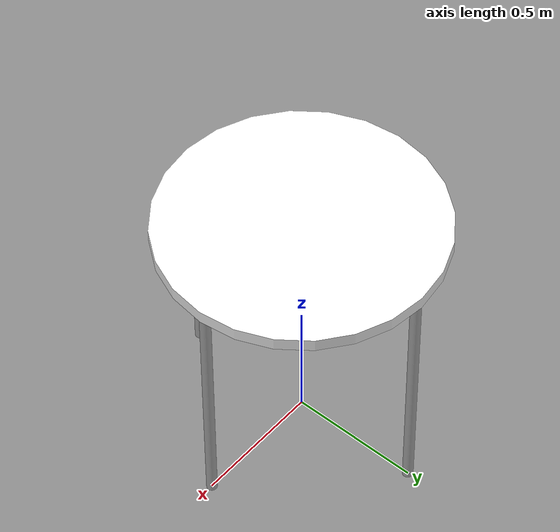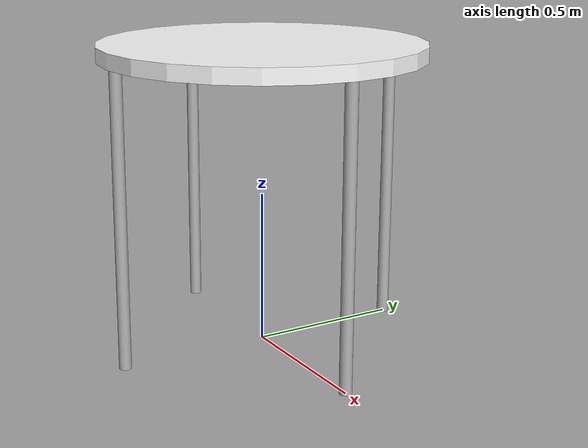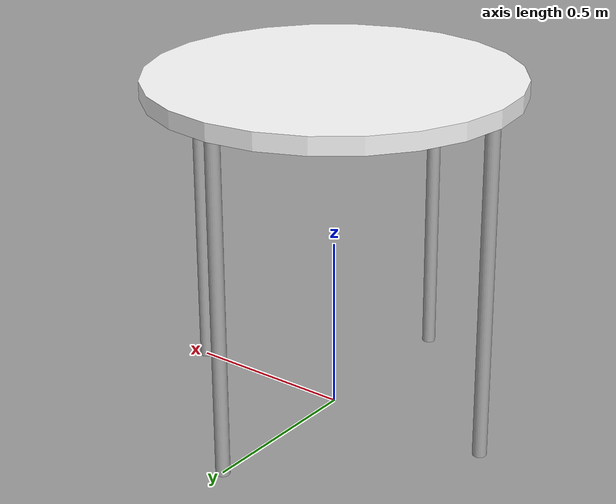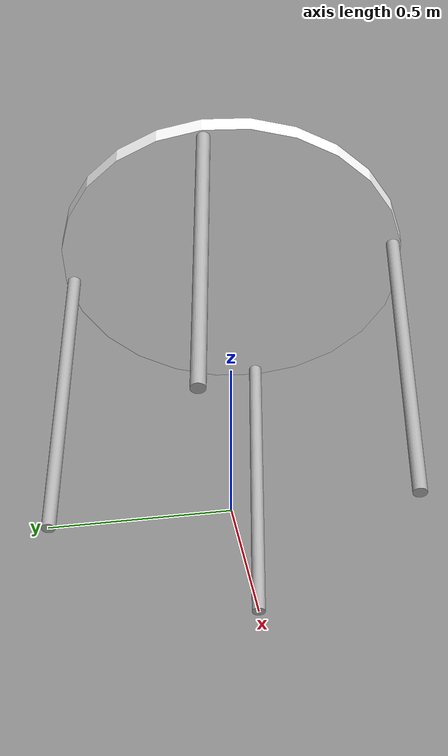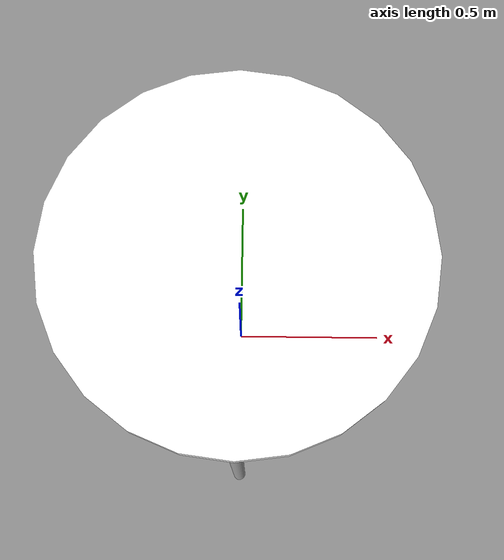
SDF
<?xml version="1.0" ?>
<sdf version="1.5">
  <model name="table">
    <static>true</static>
    <link name="link">
      <collision name="surface">
        <pose>0 0 0.975 0 0 0</pose>
        <geometry>
          <cylinder>
            <radius>0.525</radius>
            <length>0.05</length>
          </cylinder>
        </geometry>
        <surface>
          <friction>
            <ode>
              <mu>0.6</mu>
              <mu2>0.6</mu2>
            </ode>
          </friction>
        </surface>
      </collision>
      <visual name="visual1">
        <pose>0 0 0.975 0 0 0</pose>
        <geometry>
          <cylinder>
            <radius>0.525</radius>
            <length>0.05</length>
          </cylinder>
        </geometry>
        <material>
          <ambient>1.0 1.0 1.0 1.0</ambient>
          <diffuse>1.0 1.0 1.0 1.0</diffuse>
          <specular>0.2 0.2 0.2 1.0</specular>
          <pbr>
            <metal>
              <albedo_map>textures/table.jpg</albedo_map>
            </metal>
          </pbr>
        </material>
      </visual>
      <collision name="left_leg">
        <pose>0 0.5 0.475 0 0 0</pose>
        <geometry>
          <cylinder>
            <radius>0.02</radius>
            <length>0.95</length>
          </cylinder>
        </geometry>
      </collision>
      <visual name="left_leg">
        <pose>0 0.5 0.475 0 0 0</pose>
        <geometry>
          <cylinder>
            <radius>0.02</radius>
            <length>0.95</length>
          </cylinder>
        </geometry>
        <material>
          <ambient>0.3 0.3 0.3 1.0</ambient>
          <diffuse>0.7 0.7 0.7 1.0</diffuse>
          <specular>0.01 0.01 0.01 1.0</specular>
        </material>
      </visual>
      <collision name="right_leg">
        <pose>0 -0.5 0.475 0 0 0</pose>
        <geometry>
          <cylinder>
            <radius>0.02</radius>
            <length>0.95</length>
          </cylinder>
        </geometry>
      </collision>
      <visual name="right_leg">
        <pose>0 -0.5 0.475 0 0 0</pose>
        <geometry>
          <cylinder>
            <radius>0.02</radius>
            <length>0.95</length>
          </cylinder>
        </geometry>
        <material>
          <ambient>0.3 0.3 0.3 1.0</ambient>
          <diffuse>0.7 0.7 0.7 1.0</diffuse>
          <specular>0.01 0.01 0.01 1.0</specular>
        </material>
      </visual>
      <collision name="front_leg">
        <pose>0.5 0 0.475 0 0 0</pose>
        <geometry>
          <cylinder>
            <radius>0.02</radius>
            <length>0.95</length>
          </cylinder>
        </geometry>
      </collision>
      <visual name="front_leg">
        <pose>0.5 0 0.475 0 0 0</pose>
        <geometry>
          <cylinder>
            <radius>0.02</radius>
            <length>0.95</length>
          </cylinder>
        </geometry>
        <material>
          <ambient>0.3 0.3 0.3 1.0</ambient>
          <diffuse>0.7 0.7 0.7 1.0</diffuse>
          <specular>0.01 0.01 0.01 1.0</specular>
        </material>
      </visual>
      <collision name="back_leg">
        <pose>-0.5 0 0.475 0 0 0</pose>
        <geometry>
          <cylinder>
            <radius>0.02</radius>
            <length>0.95</length>
          </cylinder>
        </geometry>
      </collision>
      <visual name="back_leg">
        <pose>-0.5 0 0.475 0 0 0</pose>
        <geometry>
          <cylinder>
            <radius>0.02</radius>
            <length>0.95</length>
          </cylinder>
        </geometry>
        <material>
          <ambient>0.3 0.3 0.3 1.0</ambient>
          <diffuse>0.7 0.7 0.7 1.0</diffuse>
          <specular>0.01 0.01 0.01 1.0</specular>
        </material>
      </visual>
    </link>
  </model>
</sdf>
